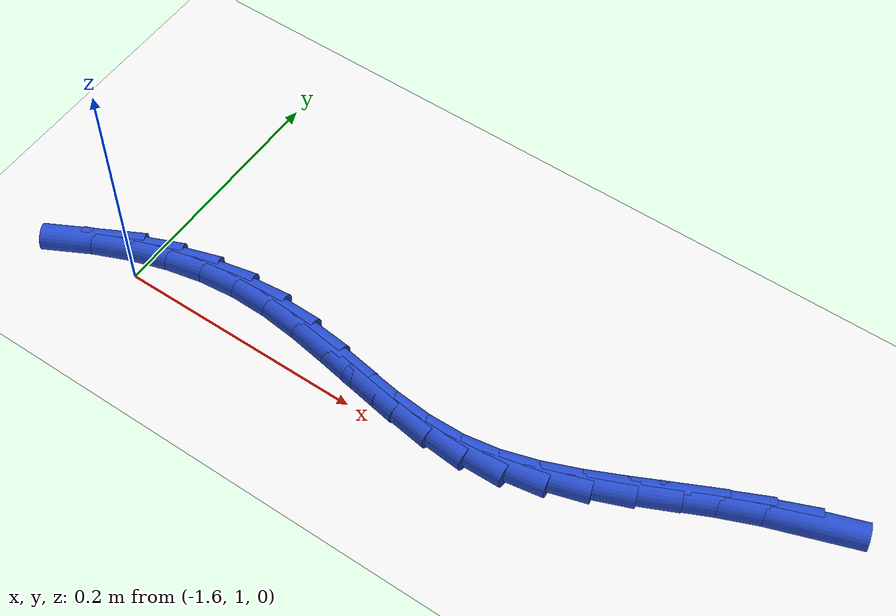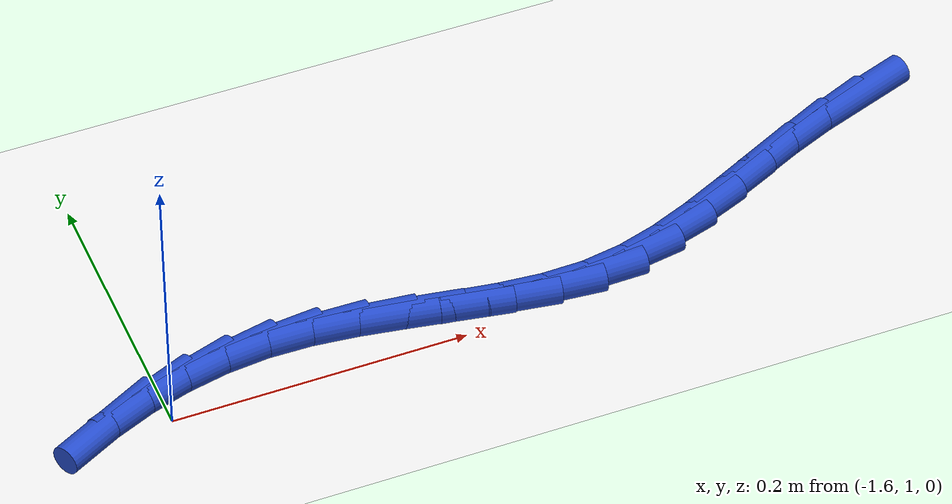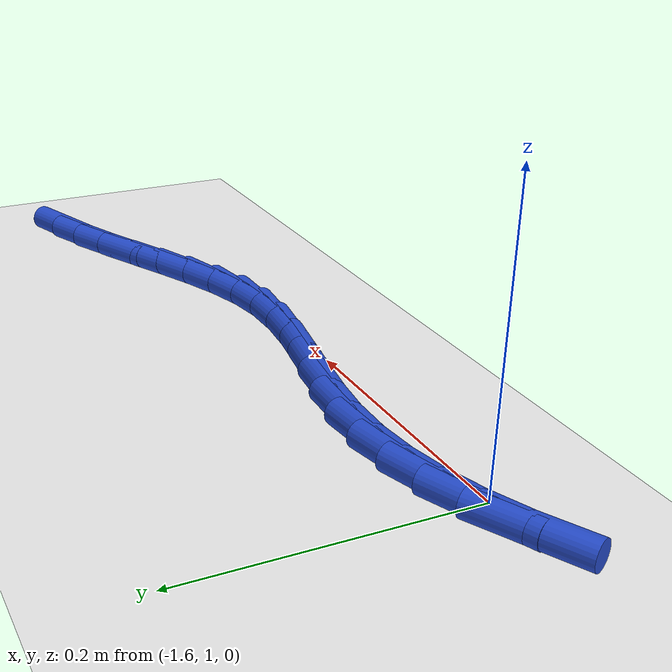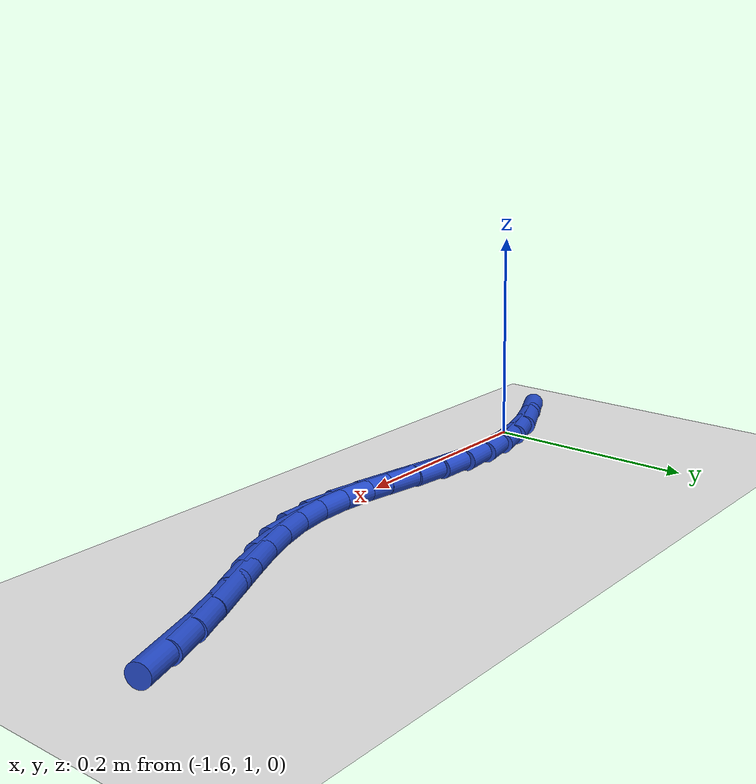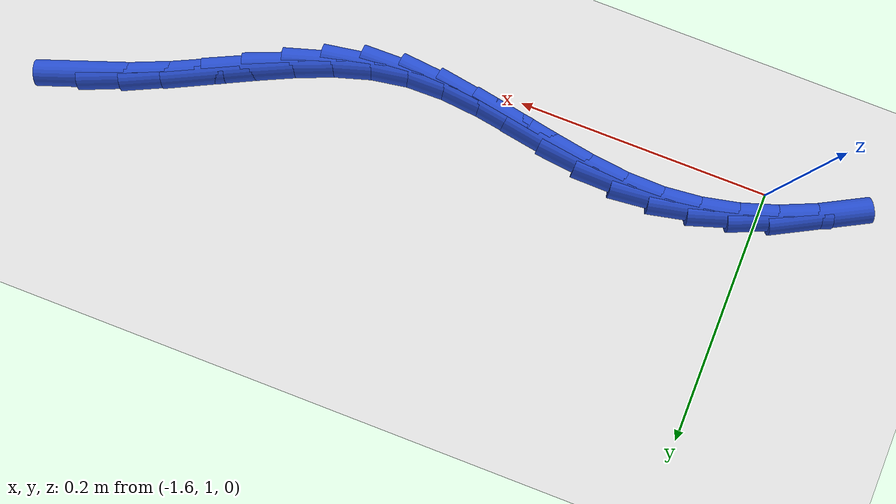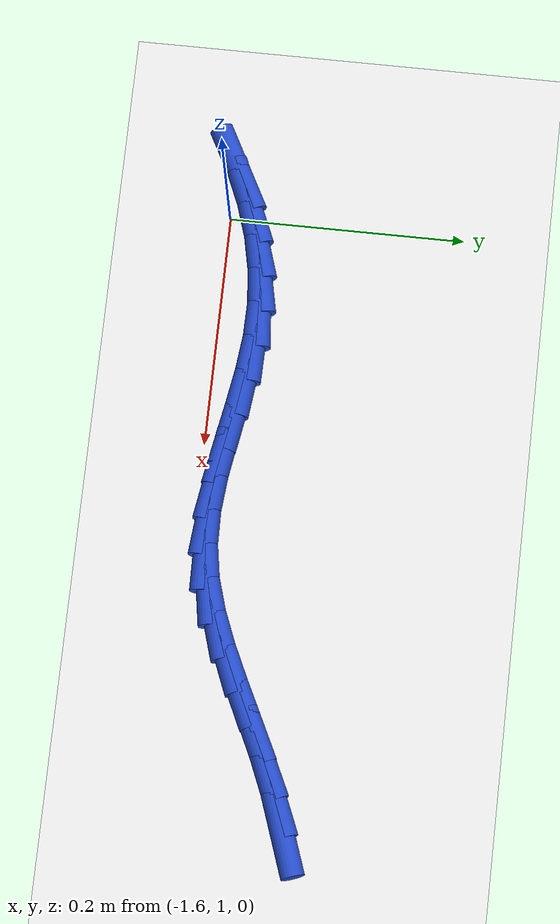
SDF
<sdf version="1.6">
 <world name="default">
  <model name="ground_plane">
   <static>1</static>
   <link name="link">
    <collision name="collision">
     <geometry><plane><normal>0 0 1</normal><size>100 100</size></plane></geometry>
     <surface><friction><ode><mu>100</mu><mu2>50</mu2></ode></friction></surface>
    </collision>
    <visual name="visual">
     <cast_shadows>0</cast_shadows>
     <geometry><plane><normal>0 0 1</normal><size>100 100</size></plane></geometry>
     <material>
      <script><uri>file://media/materials/scripts/gazebo.material</uri><name>Gazebo/WhiteGlow</name></script>
     </material>
    </visual>
   </link>
  </model>
  <model name="line">
   <link name="link_60">
    <pose>-1.0819099878944192 1.0995222463819616 0.01 0 1.57 0.3362142021863939</pose>
    <collision name="collision">
     <geometry><cylinder><radius>0.01</radius><length>0.08</length></cylinder></geometry>
    </collision>
    <visual name="visual">
     <material>
      <script><name>Gazebo/Blue</name><uri>file://media/materials/scripts/gazebo.material</uri></script>
     </material>
     <geometry><cylinder><radius>0.01</radius><length>0.08</length></cylinder></geometry>
    </visual>
   </link>
   <link name="link_61">
    <pose>-1.112283250810109 1.0889073061083345 0.01 0 1.57 0.3946468472348083</pose>
    <collision name="collision">
     <geometry><cylinder><radius>0.01</radius><length>0.08</length></cylinder></geometry>
    </collision>
    <visual name="visual">
     <material>
      <script><name>Gazebo/Blue</name><uri>file://media/materials/scripts/gazebo.material</uri></script>
     </material>
     <geometry><cylinder><radius>0.01</radius><length>0.08</length></cylinder></geometry>
    </visual>
   </link>
   <link name="link_62">
    <pose>-1.141916818403076 1.0765650035251488 0.01 0 1.57 0.4394264871074744</pose>
    <collision name="collision">
     <geometry><cylinder><radius>0.01</radius><length>0.08</length></cylinder></geometry>
    </collision>
    <visual name="visual">
     <material>
      <script><name>Gazebo/Blue</name><uri>file://media/materials/scripts/gazebo.material</uri></script>
     </material>
     <geometry><cylinder><radius>0.01</radius><length>0.08</length></cylinder></geometry>
    </visual>
   </link>
   <link name="link_63">
    <pose>-1.1707611426341527 1.063005860899622 0.01 0 1.57 0.4538900260257466</pose>
    <collision name="collision">
     <geometry><cylinder><radius>0.01</radius><length>0.08</length></cylinder></geometry>
    </collision>
    <visual name="visual">
     <material>
      <script><name>Gazebo/Blue</name><uri>file://media/materials/scripts/gazebo.material</uri></script>
     </material>
     <geometry><cylinder><radius>0.01</radius><length>0.08</length></cylinder></geometry>
    </visual>
   </link>
   <link name="link_64">
    <pose>-1.1990628973556527 1.0491985143264733 0.01 0 1.57 0.4355872632187543</pose>
    <collision name="collision">
     <geometry><cylinder><radius>0.01</radius><length>0.08</length></cylinder></geometry>
    </collision>
    <visual name="visual">
     <material>
      <script><name>Gazebo/Blue</name><uri>file://media/materials/scripts/gazebo.material</uri></script>
     </material>
     <geometry><cylinder><radius>0.01</radius><length>0.08</length></cylinder></geometry>
    </visual>
   </link>
   <link name="link_65">
    <pose>-1.2270950804445544 1.0361523105975028 0.01 0 1.57 0.38239510337548394</pose>
    <collision name="collision">
     <geometry><cylinder><radius>0.01</radius><length>0.08</length></cylinder></geometry>
    </collision>
    <visual name="visual">
     <material>
      <script><name>Gazebo/Blue</name><uri>file://media/materials/scripts/gazebo.material</uri></script>
     </material>
     <geometry><cylinder><radius>0.01</radius><length>0.08</length></cylinder></geometry>
    </visual>
   </link>
   <link name="link_66">
    <pose>-1.255130689777832 1.0248765965045101 0.01 0 1.57 0.2915302737479753</pose>
    <collision name="collision">
     <geometry><cylinder><radius>0.01</radius><length>0.08</length></cylinder></geometry>
    </collision>
    <visual name="visual">
     <material>
      <script><name>Gazebo/Blue</name><uri>file://media/materials/scripts/gazebo.material</uri></script>
     </material>
     <geometry><cylinder><radius>0.01</radius><length>0.08</length></cylinder></geometry>
    </visual>
   </link>
   <link name="link_67">
    <pose>-1.2834427232324628 1.0163807188392964 0.01 0 1.57 0.16170790497495743</pose>
    <collision name="collision">
     <geometry><cylinder><radius>0.01</radius><length>0.08</length></cylinder></geometry>
    </collision>
    <visual name="visual">
     <material>
      <script><name>Gazebo/Blue</name><uri>file://media/materials/scripts/gazebo.material</uri></script>
     </material>
     <geometry><cylinder><radius>0.01</radius><length>0.08</length></cylinder></geometry>
    </visual>
   </link>
   <link name="link_68">
    <pose>-1.3123038762742474 1.0116725316949333 0.01 0 1.57 0.01643625740724954</pose>
    <collision name="collision">
     <geometry><cylinder><radius>0.01</radius><length>0.08</length></cylinder></geometry>
    </collision>
    <visual name="visual">
     <material>
      <script><name>Gazebo/Blue</name><uri>file://media/materials/scripts/gazebo.material</uri></script>
     </material>
     <geometry><cylinder><radius>0.01</radius><length>0.08</length></cylinder></geometry>
    </visual>
   </link>
   <link name="link_69">
    <pose>-1.341870683514178 1.0111865202742203 0.01 0 1.57 -0.09045481558138192</pose>
    <collision name="collision">
     <geometry><cylinder><radius>0.01</radius><length>0.08</length></cylinder></geometry>
    </collision>
    <visual name="visual">
     <material>
      <script><name>Gazebo/Blue</name><uri>file://media/materials/scripts/gazebo.material</uri></script>
     </material>
     <geometry><cylinder><radius>0.01</radius><length>0.08</length></cylinder></geometry>
    </visual>
   </link>
   <link name="link_70">
    <pose>-1.3720085371938053 1.0139200937739732 0.01 0 1.57 -0.153679985543018</pose>
    <collision name="collision">
     <geometry><cylinder><radius>0.01</radius><length>0.08</length></cylinder></geometry>
    </collision>
    <visual name="visual">
     <material>
      <script><name>Gazebo/Blue</name><uri>file://media/materials/scripts/gazebo.material</uri></script>
     </material>
     <geometry><cylinder><radius>0.01</radius><length>0.08</length></cylinder></geometry>
    </visual>
   </link>
   <link name="link_71">
    <pose>-1.4025379511300267 1.0186491419076829 0.01 0 1.57 -0.1770512199456167</pose>
    <collision name="collision">
     <geometry><cylinder><radius>0.01</radius><length>0.08</length></cylinder></geometry>
    </collision>
    <visual name="visual">
     <material>
      <script><name>Gazebo/Blue</name><uri>file://media/materials/scripts/gazebo.material</uri></script>
     </material>
     <geometry><cylinder><radius>0.01</radius><length>0.08</length></cylinder></geometry>
    </visual>
   </link>
   <link name="link_72">
    <pose>-1.4332794391397405 1.024149554388842 0.01 0 1.57 -0.16257568932504643</pose>
    <collision name="collision">
     <geometry><cylinder><radius>0.01</radius><length>0.08</length></cylinder></geometry>
    </collision>
    <visual name="visual">
     <material>
      <script><name>Gazebo/Blue</name><uri>file://media/materials/scripts/gazebo.material</uri></script>
     </material>
     <geometry><cylinder><radius>0.01</radius><length>0.08</length></cylinder></geometry>
    </visual>
   </link>
   <link name="link_73">
    <pose>-1.4640535150398462 1.0291972209309408 0.01 0 1.57 -0.1096182654560711</pose>
    <collision name="collision">
     <geometry><cylinder><radius>0.01</radius><length>0.08</length></cylinder></geometry>
    </collision>
    <visual name="visual">
     <material>
      <script><name>Gazebo/Blue</name><uri>file://media/materials/scripts/gazebo.material</uri></script>
     </material>
     <geometry><cylinder><radius>0.01</radius><length>0.08</length></cylinder></geometry>
    </visual>
   </link>
   <link name="link_74">
    <pose>-1.4946806926472416 1.0325680312474714 0.01 0 1.57 -0.01614259737857227</pose>
    <collision name="collision">
     <geometry><cylinder><radius>0.01</radius><length>0.08</length></cylinder></geometry>
    </collision>
    <visual name="visual">
     <material>
      <script><name>Gazebo/Blue</name><uri>file://media/materials/scripts/gazebo.material</uri></script>
     </material>
     <geometry><cylinder><radius>0.01</radius><length>0.08</length></cylinder></geometry>
    </visual>
   </link>
   <link name="link_75">
    <pose>-1.5249831169390007 1.033057233575823 0.01 0 1.57 0.09881605148375272</pose>
    <collision name="collision">
     <geometry><cylinder><radius>0.01</radius><length>0.08</length></cylinder></geometry>
    </collision>
    <visual name="visual">
     <material>
      <script><name>Gazebo/Blue</name><uri>file://media/materials/scripts/gazebo.material</uri></script>
     </material>
     <geometry><cylinder><radius>0.01</radius><length>0.08</length></cylinder></geometry>
    </visual>
   </link>
   <link name="link_76">
    <pose>-1.5548366498145625 1.0300975857865686 0.01 0 1.57 0.2084973328072489</pose>
    <collision name="collision">
     <geometry><cylinder><radius>0.01</radius><length>0.08</length></cylinder></geometry>
    </collision>
    <visual name="visual">
     <material>
      <script><name>Gazebo/Blue</name><uri>file://media/materials/scripts/gazebo.material</uri></script>
     </material>
     <geometry><cylinder><radius>0.01</radius><length>0.08</length></cylinder></geometry>
    </visual>
   </link>
   <link name="link_77">
    <pose>-1.5841817919173038 1.023888974992292 0.01 0 1.57 0.309771538604265</pose>
    <collision name="collision">
     <geometry><cylinder><radius>0.01</radius><length>0.08</length></cylinder></geometry>
    </collision>
    <visual name="visual">
     <material>
      <script><name>Gazebo/Blue</name><uri>file://media/materials/scripts/gazebo.material</uri></script>
     </material>
     <geometry><cylinder><radius>0.01</radius><length>0.08</length></cylinder></geometry>
    </visual>
   </link>
   <link name="link_78">
    <pose>-1.612962882899172 1.0146768494590823 0.01 0 1.57 0.4019189414343428</pose>
    <collision name="collision">
     <geometry><cylinder><radius>0.01</radius><length>0.08</length></cylinder></geometry>
    </collision>
    <visual name="visual">
     <material>
      <script><name>Gazebo/Blue</name><uri>file://media/materials/scripts/gazebo.material</uri></script>
     </material>
     <geometry><cylinder><radius>0.01</radius><length>0.08</length></cylinder></geometry>
    </visual>
   </link>
   <link name="link_79">
    <pose>-1.6411242624121138 1.0027066574530294 0.01 0 1.57 0.48494762592276675</pose>
    <collision name="collision">
     <geometry><cylinder><radius>0.01</radius><length>0.08</length></cylinder></geometry>
    </collision>
    <visual name="visual">
     <material>
      <script><name>Gazebo/Blue</name><uri>file://media/materials/scripts/gazebo.material</uri></script>
     </material>
     <geometry><cylinder><radius>0.01</radius><length>0.08</length></cylinder></geometry>
    </visual>
   </link>
  </model>
 </world>
</sdf>
